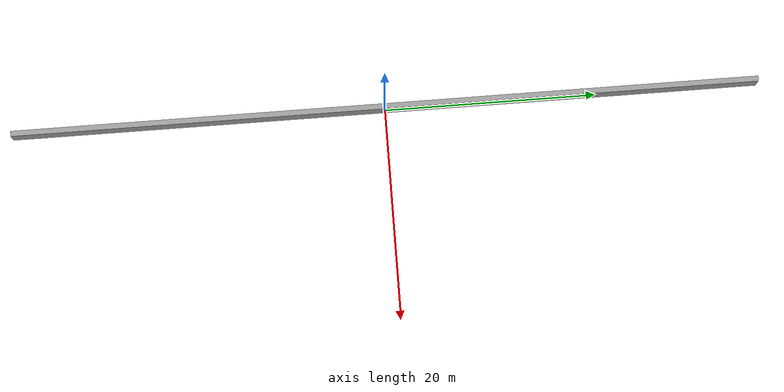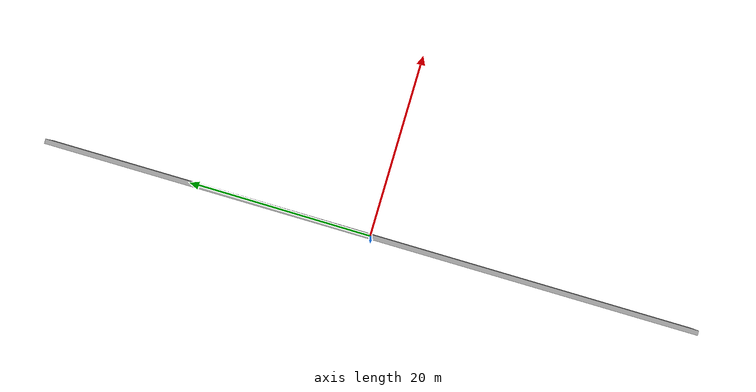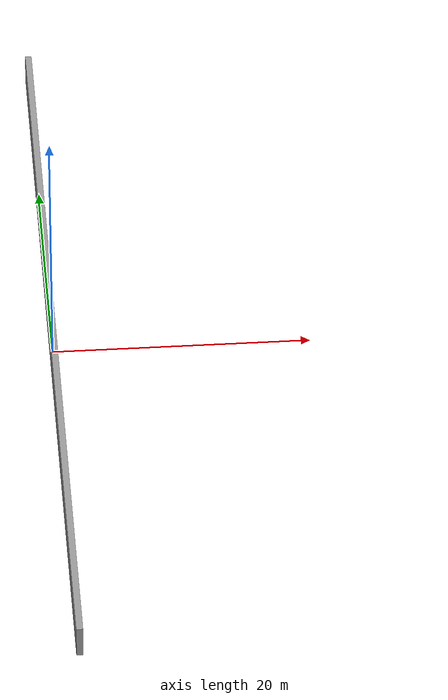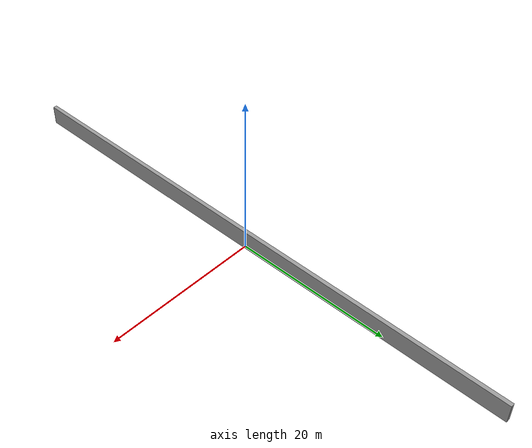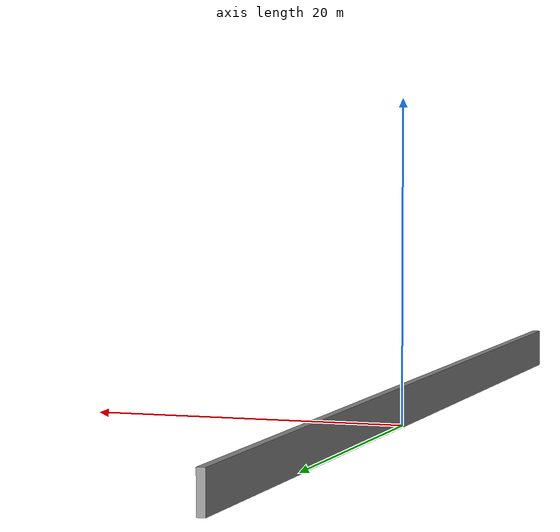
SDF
<?xml version='1.0'?>
<sdf version='1.6'>
  <model name='wall_70'>
    <pose frame=''>0 0 0 0 -0 0</pose>
    <link name='Wall_6'>
      <collision name='Wall_6_Collision'>
        <geometry>
          <box>
            <size>70.5 0.5 2.5</size>
          </box>
        </geometry>
        <pose frame=''>0 0 1.25 0 -0 0</pose>
      </collision>
      <visual name='Wall_6_Visual'>
        <pose frame=''>0 0 1.25 0 -0 0</pose>
        <geometry>
          <box>
            <size>70.5 0.5 2.5</size>
          </box>
        </geometry>
        <material>
          <script>
            <uri>file://media/materials/scripts/gazebo.material</uri>
            <name>Gazebo/Grey</name>
          </script>
          <ambient>1 1 1 1</ambient>
        </material>
        <meta>
          <layer>0</layer>
        </meta>
      </visual>
      <pose frame=''>0 0 0 0 -0 1.5708</pose>
    </link>
    <static>1</static>
  </model>
</sdf>
